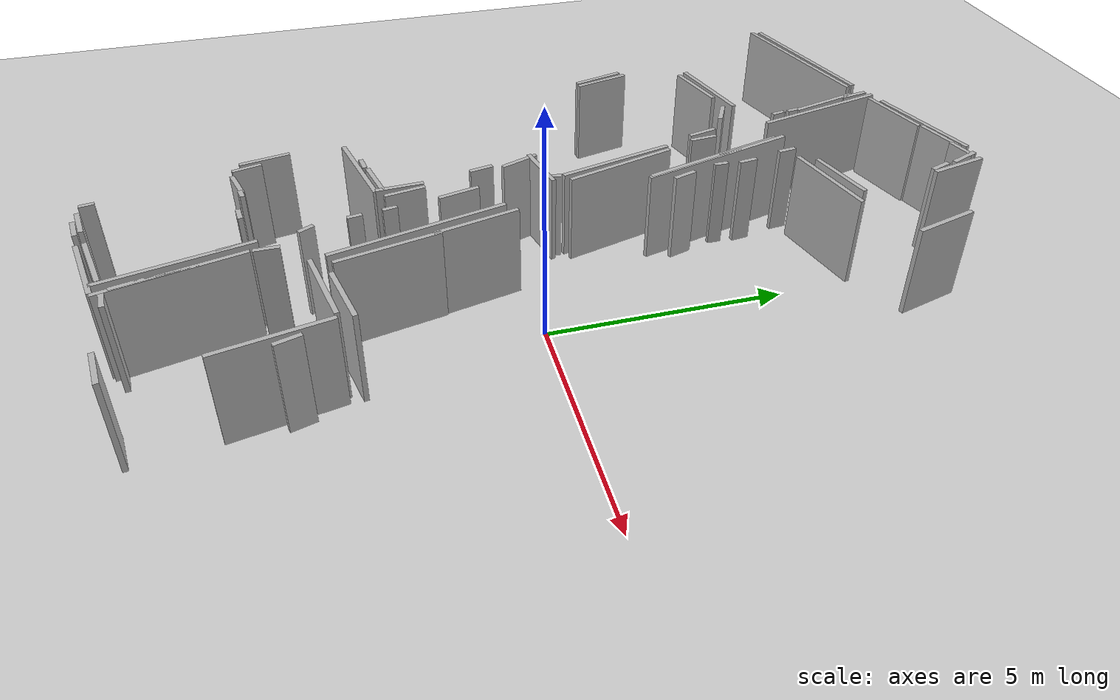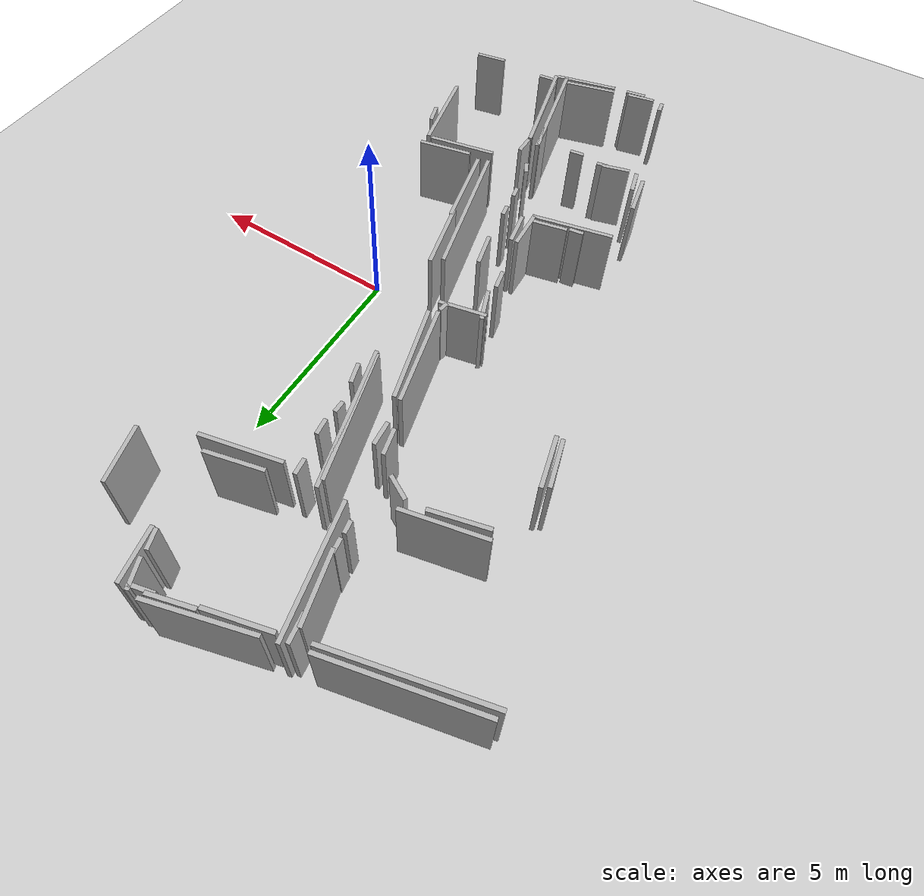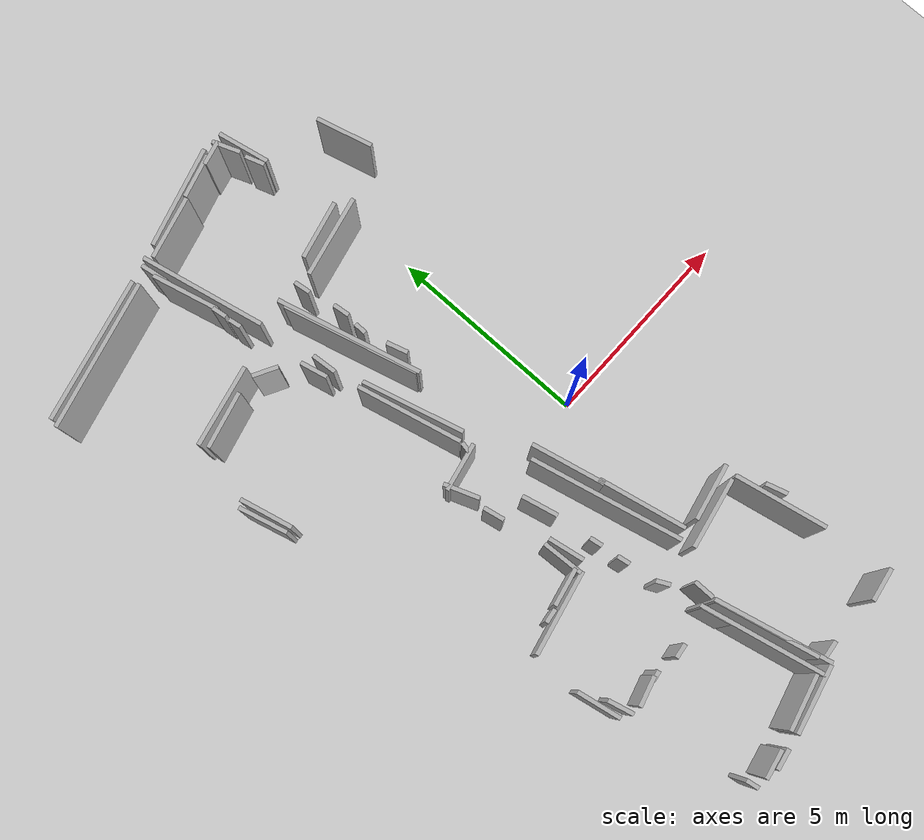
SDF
<sdf version="1.6">
 <world name="slam_world">
  <model name="ground_plane">
   <static>true</static>
   <link name="link">
    <collision name="collision">
     <geometry><plane><normal>0 0 1</normal><size>100 100</size></plane></geometry>
    </collision>
    <visual name="visual">
     <geometry><plane><normal>0 0 1</normal><size>100 100</size></plane></geometry>
     <material>
      <ambient>0.8 0.8 0.8 1</ambient>
      <diffuse>0.8 0.8 0.8 1</diffuse>
      <specular>0.8 0.8 0.8 1</specular>
     </material>
    </visual>
   </link>
  </model>
  <model name="wall_0">
   <static>true</static>
   <pose>0.2850000000000019 -3.74 1.0 0 0 0.21866894587394195</pose>
   <link name="link">
    <collision name="collision">
     <geometry><box><size>1.3829316685939332 0.1 2.0</size></box></geometry>
    </collision>
    <visual name="visual">
     <geometry><box><size>1.3829316685939332 0.1 2.0</size></box></geometry>
     <material>
      <ambient>0.5 0.5 0.5 1</ambient>
      <diffuse>0.7 0.7 0.7 1</diffuse>
      <specular>0.1 0.1 0.1 1</specular>
     </material>
    </visual>
   </link>
  </model>
  <model name="wall_2">
   <static>true</static>
   <pose>-6.464999999999999 8.485 1.0 0 0 0.24156570709532596</pose>
   <link name="link">
    <collision name="collision"><geometry><box><size>3.553167600887974 0.1 2.0</size></box></geometry></collision>
    <visual name="visual">
     <geometry><box><size>3.553167600887974 0.1 2.0</size></box></geometry>
     <material>
      <ambient>0.5 0.5 0.5 1</ambient>
      <diffuse>0.7 0.7 0.7 1</diffuse>
      <specular>0.1 0.1 0.1 1</specular>
     </material>
    </visual>
   </link>
  </model>
  <model name="wall_3">
   <static>true</static>
   <pose>-0.03999999999999915 -4.065 1.0 0 0 0.20304521725346514</pose>
   <link name="link">
    <collision name="collision">
     <geometry><box><size>1.7356554957709784 0.1 2.0</size></box></geometry>
    </collision>
    <visual name="visual">
     <geometry><box><size>1.7356554957709784 0.1 2.0</size></box></geometry>
     <material>
      <ambient>0.5 0.5 0.5 1</ambient>
      <diffuse>0.7 0.7 0.7 1</diffuse>
      <specular>0.1 0.1 0.1 1</specular>
     </material>
    </visual>
   </link>
  </model>
  <model name="wall_4">
   <static>true</static>
   <pose>-0.589999999999999 -7.815 1.0 0 0 0.12435499454676144</pose>
   <link name="link">
    <collision name="collision">
     <geometry><box><size>0.40311288741492746 0.1 2.0</size></box></geometry>
    </collision>
    <visual name="visual">
     <geometry><box><size>0.40311288741492746 0.1 2.0</size></box></geometry>
     <material>
      <ambient>0.5 0.5 0.5 1</ambient>
      <diffuse>0.7 0.7 0.7 1</diffuse>
      <specular>0.1 0.1 0.1 1</specular>
     </material>
    </visual>
   </link>
  </model>
  <model name="wall_6">
   <static>true</static>
   <pose>-3.514999999999999 4.535 1.0 0 0 -1.3439974787410107</pose>
   <link name="link">
    <collision name="collision">
     <geometry><box><size>0.6670832032063168 0.1 2.0</size></box></geometry>
    </collision>
    <visual name="visual">
     <geometry><box><size>0.6670832032063168 0.1 2.0</size></box></geometry>
     <material>
      <ambient>0.5 0.5 0.5 1</ambient>
      <diffuse>0.7 0.7 0.7 1</diffuse>
      <specular>0.1 0.1 0.1 1</specular>
     </material>
    </visual>
   </link>
  </model>
  <model name="wall_8">
   <static>true</static>
   <pose>-1.339999999999999 -1.0150000000000006 1.0 0 0 -1.346085158380254</pose>
   <link name="link">
    <collision name="collision"><geometry><box><size>1.795132307101624 0.1 2.0</size></box></geometry></collision>
    <visual name="visual">
     <geometry><box><size>1.795132307101624 0.1 2.0</size></box></geometry>
     <material>
      <ambient>0.5 0.5 0.5 1</ambient>
      <diffuse>0.7 0.7 0.7 1</diffuse>
      <specular>0.1 0.1 0.1 1</specular>
     </material>
    </visual>
   </link>
  </model>
  <model name="wall_9">
   <static>true</static>
   <pose>-2.639999999999999 9.510000000000002 1.0 0 0 0.28379410920832787</pose>
   <link name="link">
    <collision name="collision"><geometry><box><size>2.5 0.1 2.0</size></box></geometry></collision>
    <visual name="visual">
     <geometry><box><size>2.5 0.1 2.0</size></box></geometry>
     <material>
      <ambient>0.5 0.5 0.5 1</ambient>
      <diffuse>0.7 0.7 0.7 1</diffuse>
      <specular>0.1 0.1 0.1 1</specular>
     </material>
    </visual>
   </link>
  </model>
  <model name="wall_12">
   <static>true</static>
   <pose>-2.214999999999999 -2.59 1.0 0 0 -1.4056476493802699</pose>
   <link name="link">
    <collision name="collision"><geometry><box><size>0.304138126514911 0.1 2.0</size></box></geometry></collision>
    <visual name="visual">
     <geometry><box><size>0.304138126514911 0.1 2.0</size></box></geometry>
     <material>
      <ambient>0.5 0.5 0.5 1</ambient>
      <diffuse>0.7 0.7 0.7 1</diffuse>
      <specular>0.1 0.1 0.1 1</specular>
     </material>
    </visual>
   </link>
  </model>
  <model name="wall_13">
   <static>true</static>
   <pose>-2.1149999999999984 -3.29 1.0 0 0 -1.4056476493802699</pose>
   <link name="link">
    <collision name="collision"><geometry><box><size>0.304138126514911 0.1 2.0</size></box></geometry></collision>
    <visual name="visual">
     <geometry><box><size>0.304138126514911 0.1 2.0</size></box></geometry>
     <material>
      <ambient>0.5 0.5 0.5 1</ambient>
      <diffuse>0.7 0.7 0.7 1</diffuse>
      <specular>0.1 0.1 0.1 1</specular>
     </material>
    </visual>
   </link>
  </model>
  <model name="wall_14">
   <static>true</static>
   <pose>-3.8649999999999993 7.609999999999999 1.0 0 0 -1.3574276846430886</pose>
   <link name="link">
    <collision name="collision">
     <geometry><box><size>3.0696090956341657 0.1 2.0</size></box></geometry>
    </collision>
    <visual name="visual">
     <geometry><box><size>3.0696090956341657 0.1 2.0</size></box></geometry>
     <material>
      <ambient>0.5 0.5 0.5 1</ambient>
      <diffuse>0.7 0.7 0.7 1</diffuse>
      <specular>0.1 0.1 0.1 1</specular>
     </material>
    </visual>
   </link>
  </model>
  <model name="wall_15">
   <static>true</static>
   <pose>1.2100000000000009 -7.765000000000001 1.0 0 0 0.18534794999569476</pose>
   <link name="link">
    <collision name="collision">
     <geometry><box><size>0.8139410298049854 0.1 2.0</size></box></geometry>
    </collision>
    <visual name="visual">
     <geometry><box><size>0.8139410298049854 0.1 2.0</size></box></geometry>
     <material>
      <ambient>0.5 0.5 0.5 1</ambient>
      <diffuse>0.7 0.7 0.7 1</diffuse>
      <specular>0.1 0.1 0.1 1</specular>
     </material>
    </visual>
   </link>
  </model>
  <model name="wall_16">
   <static>true</static>
   <pose>0.9850000000000012 7.785 1.0 0 0 -1.317122230656254</pose>
   <link name="link">
    <collision name="collision">
     <geometry><box><size>1.3946325680981353 0.1 2.0</size></box></geometry>
    </collision>
    <visual name="visual">
     <geometry><box><size>1.3946325680981353 0.1 2.0</size></box></geometry>
     <material>
      <ambient>0.5 0.5 0.5 1</ambient>
      <diffuse>0.7 0.7 0.7 1</diffuse>
      <specular>0.1 0.1 0.1 1</specular>
     </material>
    </visual>
   </link>
  </model>
  <model name="wall_17">
   <static>true</static>
   <pose>-4.139999999999999 7.859999999999999 1.0 0 0 -1.3258176636680326</pose>
   <link name="link">
    <collision name="collision">
     <geometry><box><size>1.6492422502470643 0.1 2.0</size></box></geometry>
    </collision>
    <visual name="visual">
     <geometry><box><size>1.6492422502470643 0.1 2.0</size></box></geometry>
     <material>
      <ambient>0.5 0.5 0.5 1</ambient>
      <diffuse>0.7 0.7 0.7 1</diffuse>
      <specular>0.1 0.1 0.1 1</specular>
     </material>
    </visual>
   </link>
  </model>
  <model name="wall_18">
   <static>true</static>
   <pose>-3.2399999999999984 -8.465 1.0 0 0 0.21109333322274654</pose>
   <link name="link">
    <collision name="collision">
     <geometry><box><size>0.7158910531638177 0.1 2.0</size></box></geometry>
    </collision>
    <visual name="visual">
     <geometry><box><size>0.7158910531638177 0.1 2.0</size></box></geometry>
     <material>
      <ambient>0.5 0.5 0.5 1</ambient>
      <diffuse>0.7 0.7 0.7 1</diffuse>
      <specular>0.1 0.1 0.1 1</specular>
     </material>
    </visual>
   </link>
  </model>
  <model name="wall_20">
   <static>true</static>
   <pose>-6.464999999999999 8.309999999999999 1.0 0 0 0.24828990930306807</pose>
   <link name="link">
    <collision name="collision">
     <geometry><box><size>3.6623080154459977 0.1 2.0</size></box></geometry>
    </collision>
    <visual name="visual">
     <geometry><box><size>3.6623080154459977 0.1 2.0</size></box></geometry>
     <material>
      <ambient>0.5 0.5 0.5 1</ambient>
      <diffuse>0.7 0.7 0.7 1</diffuse>
      <specular>0.1 0.1 0.1 1</specular>
     </material>
    </visual>
   </link>
  </model>
  <model name="wall_21">
   <static>true</static>
   <pose>-2.664999999999999 2.3599999999999994 1.0 0 0 -1.306307944245664</pose>
   <link name="link">
    <collision name="collision">
     <geometry><box><size>2.4864633518312713 0.1 2.0</size></box></geometry>
    </collision>
    <visual name="visual">
     <geometry><box><size>2.4864633518312713 0.1 2.0</size></box></geometry>
     <material>
      <ambient>0.5 0.5 0.5 1</ambient>
      <diffuse>0.7 0.7 0.7 1</diffuse>
      <specular>0.1 0.1 0.1 1</specular>
     </material>
    </visual>
   </link>
  </model>
  <model name="wall_22">
   <static>true</static>
   <pose>-3.389999999999999 -2.74 1.0 0 0 0.21866894587394195</pose>
   <link name="link">
    <collision name="collision">
     <geometry><box><size>0.9219544457292888 0.1 2.0</size></box></geometry>
    </collision>
    <visual name="visual">
     <geometry><box><size>0.9219544457292888 0.1 2.0</size></box></geometry>
     <material>
      <ambient>0.5 0.5 0.5 1</ambient>
      <diffuse>0.7 0.7 0.7 1</diffuse>
      <specular>0.1 0.1 0.1 1</specular>
     </material>
    </visual>
   </link>
  </model>
  <model name="wall_24">
   <static>true</static>
   <pose>-3.889999999999999 -3.0150000000000006 1.0 0 0 0.2213144423477913</pose>
   <link name="link">
    <collision name="collision">
     <geometry><box><size>2.0500000000000003 0.1 2.0</size></box></geometry>
    </collision>
    <visual name="visual">
     <geometry><box><size>2.0500000000000003 0.1 2.0</size></box></geometry>
     <material>
      <ambient>0.5 0.5 0.5 1</ambient>
      <diffuse>0.7 0.7 0.7 1</diffuse>
      <specular>0.1 0.1 0.1 1</specular>
     </material>
    </visual>
   </link>
  </model>
  <model name="wall_32">
   <static>true</static>
   <pose>-2.839999999999999 2.3100000000000005 1.0 0 0 -1.3352513460740332</pose>
   <link name="link">
    <collision name="collision">
     <geometry><box><size>2.5709920264364885 0.1 2.0</size></box></geometry>
    </collision>
    <visual name="visual">
     <geometry><box><size>2.5709920264364885 0.1 2.0</size></box></geometry>
     <material>
      <ambient>0.5 0.5 0.5 1</ambient>
      <diffuse>0.7 0.7 0.7 1</diffuse>
      <specular>0.1 0.1 0.1 1</specular>
     </material>
    </visual>
   </link>
  </model>
  <model name="wall_35">
   <static>true</static>
   <pose>-1.4149999999999991 -6.615 1.0 0 0 -1.3539227111284884</pose>
   <link name="link">
    <collision name="collision"><geometry><box><size>3.020761493398643 0.1 2.0</size></box></geometry></collision>
    <visual name="visual">
     <geometry><box><size>3.020761493398643 0.1 2.0</size></box></geometry>
     <material>
      <ambient>0.5 0.5 0.5 1</ambient>
      <diffuse>0.7 0.7 0.7 1</diffuse>
      <specular>0.1 0.1 0.1 1</specular>
     </material>
    </visual>
   </link>
  </model>
  <model name="wall_36">
   <static>true</static>
   <pose>-3.039999999999999 -8.540000000000001 1.0 0 0 0.19739555984988075</pose>
   <link name="link">
    <collision name="collision">
     <geometry><box><size>0.5099019513592785 0.1 2.0</size></box></geometry>
    </collision>
    <visual name="visual">
     <geometry><box><size>0.5099019513592785 0.1 2.0</size></box></geometry>
     <material>
      <ambient>0.5 0.5 0.5 1</ambient>
      <diffuse>0.7 0.7 0.7 1</diffuse>
      <specular>0.1 0.1 0.1 1</specular>
     </material>
    </visual>
   </link>
  </model>
  <model name="wall_38">
   <static>true</static>
   <pose>-1.0649999999999986 9.535 1.0 0 0 -1.2036224929766774</pose>
   <link name="link">
    <collision name="collision"><geometry><box><size>0.696419413859206 0.1 2.0</size></box></geometry></collision>
    <visual name="visual">
     <geometry><box><size>0.696419413859206 0.1 2.0</size></box></geometry>
     <material>
      <ambient>0.5 0.5 0.5 1</ambient>
      <diffuse>0.7 0.7 0.7 1</diffuse>
      <specular>0.1 0.1 0.1 1</specular>
     </material>
    </visual>
   </link>
  </model>
  <model name="wall_46">
   <static>true</static>
   <pose>-1.089999999999999 6.635 1.0 0 0 0.24497866312686414</pose>
   <link name="link">
    <collision name="collision">
     <geometry><box><size>1.4430869689661812 0.1 2.0</size></box></geometry>
    </collision>
    <visual name="visual">
     <geometry><box><size>1.4430869689661812 0.1 2.0</size></box></geometry>
     <material>
      <ambient>0.5 0.5 0.5 1</ambient>
      <diffuse>0.7 0.7 0.7 1</diffuse>
      <specular>0.1 0.1 0.1 1</specular>
     </material>
    </visual>
   </link>
  </model>
  <model name="wall_47">
   <static>true</static>
   <pose>-1.3649999999999984 -2.1400000000000006 1.0 0 0 -1.338931665945508</pose>
   <link name="link">
    <collision name="collision">
     <geometry><box><size>3.6989863476363363 0.1 2.0</size></box></geometry>
    </collision>
    <visual name="visual">
     <geometry><box><size>3.6989863476363363 0.1 2.0</size></box></geometry>
     <material>
      <ambient>0.5 0.5 0.5 1</ambient>
      <diffuse>0.7 0.7 0.7 1</diffuse>
      <specular>0.1 0.1 0.1 1</specular>
     </material>
    </visual>
   </link>
  </model>
  <model name="wall_50">
   <static>true</static>
   <pose>-1.1649999999999991 -6.540000000000001 1.0 0 0 -1.3455195475808412</pose>
   <link name="link">
    <collision name="collision">
     <geometry><box><size>2.4622144504490264 0.1 2.0</size></box></geometry>
    </collision>
    <visual name="visual">
     <geometry><box><size>2.4622144504490264 0.1 2.0</size></box></geometry>
     <material>
      <ambient>0.5 0.5 0.5 1</ambient>
      <diffuse>0.7 0.7 0.7 1</diffuse>
      <specular>0.1 0.1 0.1 1</specular>
     </material>
    </visual>
   </link>
  </model>
  <model name="wall_54">
   <static>true</static>
   <pose>-1.839999999999999 -8.115 1.0 0 0 0.2629947316809195</pose>
   <link name="link">
    <collision name="collision">
     <geometry><box><size>1.3462912017836262 0.1 2.0</size></box></geometry>
    </collision>
    <visual name="visual">
     <geometry><box><size>1.3462912017836262 0.1 2.0</size></box></geometry>
     <material>
      <ambient>0.5 0.5 0.5 1</ambient>
      <diffuse>0.7 0.7 0.7 1</diffuse>
      <specular>0.1 0.1 0.1 1</specular>
     </material>
    </visual>
   </link>
  </model>
  <model name="wall_55">
   <static>true</static>
   <pose>-1.0149999999999988 6.335000000000001 1.0 0 0 0.22679884805388587</pose>
   <link name="link">
    <collision name="collision"><geometry><box><size>2.00124960961895 0.1 2.0</size></box></geometry></collision>
    <visual name="visual">
     <geometry><box><size>2.00124960961895 0.1 2.0</size></box></geometry>
     <material>
      <ambient>0.5 0.5 0.5 1</ambient>
      <diffuse>0.7 0.7 0.7 1</diffuse>
      <specular>0.1 0.1 0.1 1</specular>
     </material>
    </visual>
   </link>
  </model>
  <model name="wall_56">
   <static>true</static>
   <pose>-2.3149999999999986 6.01 1.0 0 0 -1.446441332248135</pose>
   <link name="link">
    <collision name="collision">
     <geometry><box><size>0.40311288741492746 0.1 2.0</size></box></geometry>
    </collision>
    <visual name="visual">
     <geometry><box><size>0.40311288741492746 0.1 2.0</size></box></geometry>
     <material>
      <ambient>0.5 0.5 0.5 1</ambient>
      <diffuse>0.7 0.7 0.7 1</diffuse>
      <specular>0.1 0.1 0.1 1</specular>
     </material>
    </visual>
   </link>
  </model>
  <model name="wall_60">
   <static>true</static>
   <pose>-2.014999999999999 9.559999999999999 1.0 0 0 0.27829965900511133</pose>
   <link name="link">
    <collision name="collision">
     <geometry><box><size>1.0920164833920778 0.1 2.0</size></box></geometry>
    </collision>
    <visual name="visual">
     <geometry><box><size>1.0920164833920778 0.1 2.0</size></box></geometry>
     <material>
      <ambient>0.5 0.5 0.5 1</ambient>
      <diffuse>0.7 0.7 0.7 1</diffuse>
      <specular>0.1 0.1 0.1 1</specular>
     </material>
    </visual>
   </link>
  </model>
  <model name="wall_61">
   <static>true</static>
   <pose>-1.9149999999999991 3.51 1.0 0 0 -1.2793395323170296</pose>
   <link name="link">
    <collision name="collision">
     <geometry><box><size>0.5220153254455275 0.1 2.0</size></box></geometry>
    </collision>
    <visual name="visual">
     <geometry><box><size>0.5220153254455275 0.1 2.0</size></box></geometry>
     <material>
      <ambient>0.5 0.5 0.5 1</ambient>
      <diffuse>0.7 0.7 0.7 1</diffuse>
      <specular>0.1 0.1 0.1 1</specular>
     </material>
    </visual>
   </link>
  </model>
  <model name="wall_67">
   <static>true</static>
   <pose>-4.064999999999999 -2.915 1.0 0 0 0.14189705460416394</pose>
   <link name="link">
    <collision name="collision">
     <geometry><box><size>0.3535533905932738 0.1 2.0</size></box></geometry>
    </collision>
    <visual name="visual">
     <geometry><box><size>0.3535533905932738 0.1 2.0</size></box></geometry>
     <material>
      <ambient>0.5 0.5 0.5 1</ambient>
      <diffuse>0.7 0.7 0.7 1</diffuse>
      <specular>0.1 0.1 0.1 1</specular>
     </material>
    </visual>
   </link>
  </model>
  <model name="wall_69">
   <static>true</static>
   <pose>-5.464999999999999 5.484999999999999 1.0 0 0 0.22679884805388587</pose>
   <link name="link">
    <collision name="collision"><geometry><box><size>2.00124960961895 0.1 2.0</size></box></geometry></collision>
    <visual name="visual">
     <geometry><box><size>2.00124960961895 0.1 2.0</size></box></geometry>
     <material>
      <ambient>0.5 0.5 0.5 1</ambient>
      <diffuse>0.7 0.7 0.7 1</diffuse>
      <specular>0.1 0.1 0.1 1</specular>
     </material>
    </visual>
   </link>
  </model>
  <model name="wall_70">
   <static>true</static>
   <pose>-0.8149999999999986 9.235 1.0 0 0 -1.373400766945016</pose>
   <link name="link">
    <collision name="collision">
     <geometry><box><size>1.2747548783981963 0.1 2.0</size></box></geometry>
    </collision>
    <visual name="visual">
     <geometry><box><size>1.2747548783981963 0.1 2.0</size></box></geometry>
     <material>
      <ambient>0.5 0.5 0.5 1</ambient>
      <diffuse>0.7 0.7 0.7 1</diffuse>
      <specular>0.1 0.1 0.1 1</specular>
     </material>
    </visual>
   </link>
  </model>
  <model name="wall_71">
   <static>true</static>
   <pose>-0.9149999999999991 -2.79 1.0 0 0 -1.35970299357215</pose>
   <link name="link">
    <collision name="collision"><geometry><box><size>2.147673159491453 0.1 2.0</size></box></geometry></collision>
    <visual name="visual">
     <geometry><box><size>2.147673159491453 0.1 2.0</size></box></geometry>
     <material>
      <ambient>0.5 0.5 0.5 1</ambient>
      <diffuse>0.7 0.7 0.7 1</diffuse>
      <specular>0.1 0.1 0.1 1</specular>
     </material>
    </visual>
   </link>
  </model>
  <model name="wall_75">
   <static>true</static>
   <pose>-2.464999999999999 4.41 1.0 0 0 -1.3111666973866392</pose>
   <link name="link">
    <collision name="collision"><geometry><box><size>3.310966626228661 0.1 2.0</size></box></geometry></collision>
    <visual name="visual">
     <geometry><box><size>3.310966626228661 0.1 2.0</size></box></geometry>
     <material>
      <ambient>0.5 0.5 0.5 1</ambient>
      <diffuse>0.7 0.7 0.7 1</diffuse>
      <specular>0.1 0.1 0.1 1</specular>
     </material>
    </visual>
   </link>
  </model>
  <model name="wall_77">
   <static>true</static>
   <pose>-1.1149999999999984 -6.665000000000001 1.0 0 0 -1.338692488719741</pose>
   <link name="link">
    <collision name="collision">
     <geometry><box><size>2.8257742301889586 0.1 2.0</size></box></geometry>
    </collision>
    <visual name="visual">
     <geometry><box><size>2.8257742301889586 0.1 2.0</size></box></geometry>
     <material>
      <ambient>0.5 0.5 0.5 1</ambient>
      <diffuse>0.7 0.7 0.7 1</diffuse>
      <specular>0.1 0.1 0.1 1</specular>
     </material>
    </visual>
   </link>
  </model>
  <model name="wall_81">
   <static>true</static>
   <pose>-1.6649999999999991 -5.540000000000001 1.0 0 0 -1.35970299357215</pose>
   <link name="link">
    <collision name="collision">
     <geometry><box><size>0.7158910531638177 0.1 2.0</size></box></geometry>
    </collision>
    <visual name="visual">
     <geometry><box><size>0.7158910531638177 0.1 2.0</size></box></geometry>
     <material>
      <ambient>0.5 0.5 0.5 1</ambient>
      <diffuse>0.7 0.7 0.7 1</diffuse>
      <specular>0.1 0.1 0.1 1</specular>
     </material>
    </visual>
   </link>
  </model>
  <model name="wall_82">
   <static>true</static>
   <pose>-3.889999999999999 -5.49 1.0 0 0 0.27829965900511133</pose>
   <link name="link">
    <collision name="collision">
     <geometry><box><size>0.7280109889280518 0.1 2.0</size></box></geometry>
    </collision>
    <visual name="visual">
     <geometry><box><size>0.7280109889280518 0.1 2.0</size></box></geometry>
     <material>
      <ambient>0.5 0.5 0.5 1</ambient>
      <diffuse>0.7 0.7 0.7 1</diffuse>
      <specular>0.1 0.1 0.1 1</specular>
     </material>
    </visual>
   </link>
  </model>
  <model name="wall_86">
   <static>true</static>
   <pose>-2.764999999999999 -5.465 1.0 0 0 0.14189705460416394</pose>
   <link name="link">
    <collision name="collision">
     <geometry><box><size>0.3535533905932738 0.1 2.0</size></box></geometry>
    </collision>
    <visual name="visual">
     <geometry><box><size>0.3535533905932738 0.1 2.0</size></box></geometry>
     <material>
      <ambient>0.5 0.5 0.5 1</ambient>
      <diffuse>0.7 0.7 0.7 1</diffuse>
      <specular>0.1 0.1 0.1 1</specular>
     </material>
    </visual>
   </link>
  </model>
  <model name="wall_87">
   <static>true</static>
   <pose>-4.789999999999999 -4.915000000000001 1.0 0 0 -1.382574821490126</pose>
   <link name="link">
    <collision name="collision">
     <geometry><box><size>1.0688779163215976 0.1 2.0</size></box></geometry>
    </collision>
    <visual name="visual">
     <geometry><box><size>1.0688779163215976 0.1 2.0</size></box></geometry>
     <material>
      <ambient>0.5 0.5 0.5 1</ambient>
      <diffuse>0.7 0.7 0.7 1</diffuse>
      <specular>0.1 0.1 0.1 1</specular>
     </material>
    </visual>
   </link>
  </model>
  <model name="wall_88">
   <static>true</static>
   <pose>-3.914999999999999 6.5600000000000005 1.0 0 0 -1.4056476493802699</pose>
   <link name="link">
    <collision name="collision"><geometry><box><size>0.304138126514911 0.1 2.0</size></box></geometry></collision>
    <visual name="visual">
     <geometry><box><size>0.304138126514911 0.1 2.0</size></box></geometry>
     <material>
      <ambient>0.5 0.5 0.5 1</ambient>
      <diffuse>0.7 0.7 0.7 1</diffuse>
      <specular>0.1 0.1 0.1 1</specular>
     </material>
    </visual>
   </link>
  </model>
  <model name="wall_89">
   <static>true</static>
   <pose>-6.6899999999999995 3.085000000000001 1.0 0 0 -1.3156139361740782</pose>
   <link name="link">
    <collision name="collision">
     <geometry><box><size>1.1884864324004714 0.1 2.0</size></box></geometry>
    </collision>
    <visual name="visual">
     <geometry><box><size>1.1884864324004714 0.1 2.0</size></box></geometry>
     <material>
      <ambient>0.5 0.5 0.5 1</ambient>
      <diffuse>0.7 0.7 0.7 1</diffuse>
      <specular>0.1 0.1 0.1 1</specular>
     </material>
    </visual>
   </link>
  </model>
  <model name="wall_90">
   <static>true</static>
   <pose>-3.2399999999999984 -0.5400000000000009 1.0 0 0 -1.373400766945016</pose>
   <link name="link">
    <collision name="collision">
     <geometry><box><size>0.5099019513592785 0.1 2.0</size></box></geometry>
    </collision>
    <visual name="visual">
     <geometry><box><size>0.5099019513592785 0.1 2.0</size></box></geometry>
     <material>
      <ambient>0.5 0.5 0.5 1</ambient>
      <diffuse>0.7 0.7 0.7 1</diffuse>
      <specular>0.1 0.1 0.1 1</specular>
     </material>
    </visual>
   </link>
  </model>
  <model name="wall_92">
   <static>true</static>
   <pose>-2.4399999999999986 -1.165 1.0 0 0 -1.3397056595989996</pose>
   <link name="link">
    <collision name="collision"><geometry><box><size>0.873212459828649 0.1 2.0</size></box></geometry></collision>
    <visual name="visual">
     <geometry><box><size>0.873212459828649 0.1 2.0</size></box></geometry>
     <material>
      <ambient>0.5 0.5 0.5 1</ambient>
      <diffuse>0.7 0.7 0.7 1</diffuse>
      <specular>0.1 0.1 0.1 1</specular>
     </material>
    </visual>
   </link>
  </model>
  <model name="wall_93">
   <static>true</static>
   <pose>1.1350000000000016 -4.99 1.0 0 0 -1.3690339824746096</pose>
   <link name="link">
    <collision name="collision"><geometry><box><size>2.245551157288562 0.1 2.0</size></box></geometry></collision>
    <visual name="visual">
     <geometry><box><size>2.245551157288562 0.1 2.0</size></box></geometry>
     <material>
      <ambient>0.5 0.5 0.5 1</ambient>
      <diffuse>0.7 0.7 0.7 1</diffuse>
      <specular>0.1 0.1 0.1 1</specular>
     </material>
    </visual>
   </link>
  </model>
  <model name="wall_96">
   <static>true</static>
   <pose>-2.139999999999999 4.41 1.0 0 0 -1.5707963267948966</pose>
   <link name="link">
    <collision name="collision">
     <geometry><box><size>0.30000000000000004 0.1 2.0</size></box></geometry>
    </collision>
    <visual name="visual">
     <geometry><box><size>0.30000000000000004 0.1 2.0</size></box></geometry>
     <material>
      <ambient>0.5 0.5 0.5 1</ambient>
      <diffuse>0.7 0.7 0.7 1</diffuse>
      <specular>0.1 0.1 0.1 1</specular>
     </material>
    </visual>
   </link>
  </model>
  <model name="wall_100">
   <static>true</static>
   <pose>-1.6399999999999988 -8.24 1.0 0 0 0.24497866312686414</pose>
   <link name="link">
    <collision name="collision">
     <geometry><box><size>1.6492422502470643 0.1 2.0</size></box></geometry>
    </collision>
    <visual name="visual">
     <geometry><box><size>1.6492422502470643 0.1 2.0</size></box></geometry>
     <material>
      <ambient>0.5 0.5 0.5 1</ambient>
      <diffuse>0.7 0.7 0.7 1</diffuse>
      <specular>0.1 0.1 0.1 1</specular>
     </material>
    </visual>
   </link>
  </model>
  <model name="wall_101">
   <static>true</static>
   <pose>-4.514999999999999 -5.290000000000001 1.0 0 0 -1.3258176636680326</pose>
   <link name="link">
    <collision name="collision">
     <geometry><box><size>0.6184658438426491 0.1 2.0</size></box></geometry>
    </collision>
    <visual name="visual">
     <geometry><box><size>0.6184658438426491 0.1 2.0</size></box></geometry>
     <material>
      <ambient>0.5 0.5 0.5 1</ambient>
      <diffuse>0.7 0.7 0.7 1</diffuse>
      <specular>0.1 0.1 0.1 1</specular>
     </material>
    </visual>
   </link>
  </model>
  <model name="wall_105">
   <static>true</static>
   <pose>-2.4399999999999986 4.484999999999999 1.0 0 0 -1.3156139361740782</pose>
   <link name="link">
    <collision name="collision"><geometry><box><size>3.565459297201414 0.1 2.0</size></box></geometry></collision>
    <visual name="visual">
     <geometry><box><size>3.565459297201414 0.1 2.0</size></box></geometry>
     <material>
      <ambient>0.5 0.5 0.5 1</ambient>
      <diffuse>0.7 0.7 0.7 1</diffuse>
      <specular>0.1 0.1 0.1 1</specular>
     </material>
    </visual>
   </link>
  </model>
  <model name="wall_106">
   <static>true</static>
   <pose>-5.664999999999999 5.234999999999999 1.0 0 0 0.2536740961386427</pose>
   <link name="link">
    <collision name="collision">
     <geometry><box><size>1.3946325680981353 0.1 2.0</size></box></geometry>
    </collision>
    <visual name="visual">
     <geometry><box><size>1.3946325680981353 0.1 2.0</size></box></geometry>
     <material>
      <ambient>0.5 0.5 0.5 1</ambient>
      <diffuse>0.7 0.7 0.7 1</diffuse>
      <specular>0.1 0.1 0.1 1</specular>
     </material>
    </visual>
   </link>
  </model>
  <model name="wall_111">
   <static>true</static>
   <pose>-1.9149999999999991 -4.24 1.0 0 0 -1.1071487177940904</pose>
   <link name="link">
    <collision name="collision">
     <geometry><box><size>0.3354101966249685 0.1 2.0</size></box></geometry>
    </collision>
    <visual name="visual">
     <geometry><box><size>0.3354101966249685 0.1 2.0</size></box></geometry>
     <material>
      <ambient>0.5 0.5 0.5 1</ambient>
      <diffuse>0.7 0.7 0.7 1</diffuse>
      <specular>0.1 0.1 0.1 1</specular>
     </material>
    </visual>
   </link>
  </model>
  <model name="wall_112">
   <static>true</static>
   <pose>-3.339999999999999 0.3100000000000005 1.0 0 0 -1.2120256565243244</pose>
   <link name="link">
    <collision name="collision">
     <geometry><box><size>0.8544003745317531 0.1 2.0</size></box></geometry>
    </collision>
    <visual name="visual">
     <geometry><box><size>0.8544003745317531 0.1 2.0</size></box></geometry>
     <material>
      <ambient>0.5 0.5 0.5 1</ambient>
      <diffuse>0.7 0.7 0.7 1</diffuse>
      <specular>0.1 0.1 0.1 1</specular>
     </material>
    </visual>
   </link>
  </model>
  <model name="wall_114">
   <static>true</static>
   <pose>-1.4399999999999986 -4.99 1.0 0 0 -1.5707963267948966</pose>
   <link name="link">
    <collision name="collision"><geometry><box><size>0.5 0.1 2.0</size></box></geometry></collision>
    <visual name="visual">
     <geometry><box><size>0.5 0.1 2.0</size></box></geometry>
     <material>
      <ambient>0.5 0.5 0.5 1</ambient>
      <diffuse>0.7 0.7 0.7 1</diffuse>
      <specular>0.1 0.1 0.1 1</specular>
     </material>
    </visual>
   </link>
  </model>
  <model name="wall_115">
   <static>true</static>
   <pose>1.285000000000002 -4.74 1.0 0 0 -1.2793395323170296</pose>
   <link name="link">
    <collision name="collision">
     <geometry><box><size>0.5220153254455275 0.1 2.0</size></box></geometry>
    </collision>
    <visual name="visual">
     <geometry><box><size>0.5220153254455275 0.1 2.0</size></box></geometry>
     <material>
      <ambient>0.5 0.5 0.5 1</ambient>
      <diffuse>0.7 0.7 0.7 1</diffuse>
      <specular>0.1 0.1 0.1 1</specular>
     </material>
    </visual>
   </link>
  </model>
  <model name="wall_116">
   <static>true</static>
   <pose>-3.264999999999999 4.460000000000001 1.0 0 0 -1.4876550949064553</pose>
   <link name="link">
    <collision name="collision">
     <geometry><box><size>0.6020797289396148 0.1 2.0</size></box></geometry>
    </collision>
    <visual name="visual">
     <geometry><box><size>0.6020797289396148 0.1 2.0</size></box></geometry>
     <material>
      <ambient>0.5 0.5 0.5 1</ambient>
      <diffuse>0.7 0.7 0.7 1</diffuse>
      <specular>0.1 0.1 0.1 1</specular>
     </material>
    </visual>
   </link>
  </model>
  <model name="wall_117">
   <static>true</static>
   <pose>-0.8649999999999984 8.835 1.0 0 0 -1.2490457723982544</pose>
   <link name="link">
    <collision name="collision">
     <geometry><box><size>0.47434164902525694 0.1 2.0</size></box></geometry>
    </collision>
    <visual name="visual">
     <geometry><box><size>0.47434164902525694 0.1 2.0</size></box></geometry>
     <material>
      <ambient>0.5 0.5 0.5 1</ambient>
      <diffuse>0.7 0.7 0.7 1</diffuse>
      <specular>0.1 0.1 0.1 1</specular>
     </material>
    </visual>
   </link>
  </model>
  <model name="wall_118">
   <static>true</static>
   <pose>-3.8649999999999993 -8.39 1.0 0 0 -1.4056476493802699</pose>
   <link name="link">
    <collision name="collision"><geometry><box><size>0.304138126514911 0.1 2.0</size></box></geometry></collision>
    <visual name="visual">
     <geometry><box><size>0.304138126514911 0.1 2.0</size></box></geometry>
     <material>
      <ambient>0.5 0.5 0.5 1</ambient>
      <diffuse>0.7 0.7 0.7 1</diffuse>
      <specular>0.1 0.1 0.1 1</specular>
     </material>
    </visual>
   </link>
  </model>
  <model name="wall_119">
   <static>true</static>
   <pose>-2.5649999999999986 0.8849999999999998 1.0 0 0 1.373400766945016</pose>
   <link name="link">
    <collision name="collision">
     <geometry><box><size>0.25495097567963926 0.1 2.0</size></box></geometry>
    </collision>
    <visual name="visual">
     <geometry><box><size>0.25495097567963926 0.1 2.0</size></box></geometry>
     <material>
      <ambient>0.5 0.5 0.5 1</ambient>
      <diffuse>0.7 0.7 0.7 1</diffuse>
      <specular>0.1 0.1 0.1 1</specular>
     </material>
    </visual>
   </link>
  </model>
  <model name="wall_121">
   <static>true</static>
   <pose>-2.1149999999999984 5.01 1.0 0 0 -1.446441332248135</pose>
   <link name="link">
    <collision name="collision">
     <geometry><box><size>0.40311288741492746 0.1 2.0</size></box></geometry>
    </collision>
    <visual name="visual">
     <geometry><box><size>0.40311288741492746 0.1 2.0</size></box></geometry>
     <material>
      <ambient>0.5 0.5 0.5 1</ambient>
      <diffuse>0.7 0.7 0.7 1</diffuse>
      <specular>0.1 0.1 0.1 1</specular>
     </material>
    </visual>
   </link>
  </model>
  <model name="wall_123">
   <static>true</static>
   <pose>-6.539999999999999 3.135 1.0 0 0 -1.3352513460740332</pose>
   <link name="link">
    <collision name="collision">
     <geometry><box><size>1.2854960132182442 0.1 2.0</size></box></geometry>
    </collision>
    <visual name="visual">
     <geometry><box><size>1.2854960132182442 0.1 2.0</size></box></geometry>
     <material>
      <ambient>0.5 0.5 0.5 1</ambient>
      <diffuse>0.7 0.7 0.7 1</diffuse>
      <specular>0.1 0.1 0.1 1</specular>
     </material>
    </visual>
   </link>
  </model>
  <model name="wall_124">
   <static>true</static>
   <pose>-3.964999999999999 6.984999999999999 1.0 0 0 -1.4288992721907328</pose>
   <link name="link">
    <collision name="collision">
     <geometry><box><size>0.3535533905932738 0.1 2.0</size></box></geometry>
    </collision>
    <visual name="visual">
     <geometry><box><size>0.3535533905932738 0.1 2.0</size></box></geometry>
     <material>
      <ambient>0.5 0.5 0.5 1</ambient>
      <diffuse>0.7 0.7 0.7 1</diffuse>
      <specular>0.1 0.1 0.1 1</specular>
     </material>
    </visual>
   </link>
  </model>
  <model name="wall_125">
   <static>true</static>
   <pose>-2.764999999999999 -2.215 1.0 0 0 -1.396124127786657</pose>
   <link name="link">
    <collision name="collision">
     <geometry><box><size>0.8631338250816034 0.1 2.0</size></box></geometry>
    </collision>
    <visual name="visual">
     <geometry><box><size>0.8631338250816034 0.1 2.0</size></box></geometry>
     <material>
      <ambient>0.5 0.5 0.5 1</ambient>
      <diffuse>0.7 0.7 0.7 1</diffuse>
      <specular>0.1 0.1 0.1 1</specular>
     </material>
    </visual>
   </link>
  </model>
  <model name="wall_126">
   <static>true</static>
   <pose>-2.964999999999999 -2.29 1.0 0 0 -1.5208379310729538</pose>
   <link name="link">
    <collision name="collision">
     <geometry><box><size>1.0012492197250393 0.1 2.0</size></box></geometry>
    </collision>
    <visual name="visual">
     <geometry><box><size>1.0012492197250393 0.1 2.0</size></box></geometry>
     <material>
      <ambient>0.5 0.5 0.5 1</ambient>
      <diffuse>0.7 0.7 0.7 1</diffuse>
      <specular>0.1 0.1 0.1 1</specular>
     </material>
    </visual>
   </link>
  </model>
  <model name="wall_127">
   <static>true</static>
   <pose>-1.3899999999999988 9.684999999999999 1.0 0 0 0.24497866312686414</pose>
   <link name="link">
    <collision name="collision">
     <geometry><box><size>0.6184658438426491 0.1 2.0</size></box></geometry>
    </collision>
    <visual name="visual">
     <geometry><box><size>0.6184658438426491 0.1 2.0</size></box></geometry>
     <material>
      <ambient>0.5 0.5 0.5 1</ambient>
      <diffuse>0.7 0.7 0.7 1</diffuse>
      <specular>0.1 0.1 0.1 1</specular>
     </material>
    </visual>
   </link>
  </model>
  <model name="wall_128">
   <static>true</static>
   <pose>-3.289999999999999 9.16 1.0 0 0 0.260602391747341</pose>
   <link name="link">
    <collision name="collision">
     <geometry><box><size>1.5524174696260025 0.1 2.0</size></box></geometry>
    </collision>
    <visual name="visual">
     <geometry><box><size>1.5524174696260025 0.1 2.0</size></box></geometry>
     <material>
      <ambient>0.5 0.5 0.5 1</ambient>
      <diffuse>0.7 0.7 0.7 1</diffuse>
      <specular>0.1 0.1 0.1 1</specular>
     </material>
    </visual>
   </link>
  </model>
  <model name="wall_129">
   <static>true</static>
   <pose>-4.289999999999999 8.684999999999999 1.0 0 0 -1.4181469983996315</pose>
   <link name="link">
    <collision name="collision">
     <geometry><box><size>0.6576473218982953 0.1 2.0</size></box></geometry>
    </collision>
    <visual name="visual">
     <geometry><box><size>0.6576473218982953 0.1 2.0</size></box></geometry>
     <material>
      <ambient>0.5 0.5 0.5 1</ambient>
      <diffuse>0.7 0.7 0.7 1</diffuse>
      <specular>0.1 0.1 0.1 1</specular>
     </material>
    </visual>
   </link>
  </model>
  <model name="wall_131">
   <static>true</static>
   <pose>-4.264999999999999 5.3100000000000005 1.0 0 0 -0.4993467216801301</pose>
   <link name="link">
    <collision name="collision">
     <geometry><box><size>0.6264982043070835 0.1 2.0</size></box></geometry>
    </collision>
    <visual name="visual">
     <geometry><box><size>0.6264982043070835 0.1 2.0</size></box></geometry>
     <material>
      <ambient>0.5 0.5 0.5 1</ambient>
      <diffuse>0.7 0.7 0.7 1</diffuse>
      <specular>0.1 0.1 0.1 1</specular>
     </material>
    </visual>
   </link>
  </model>
  <model name="wall_133">
   <static>true</static>
   <pose>-2.964999999999999 0.6850000000000005 1.0 0 0 0.21406068356382152</pose>
   <link name="link">
    <collision name="collision"><geometry><box><size>1.176860229593982 0.1 2.0</size></box></geometry></collision>
    <visual name="visual">
     <geometry><box><size>1.176860229593982 0.1 2.0</size></box></geometry>
     <material>
      <ambient>0.5 0.5 0.5 1</ambient>
      <diffuse>0.7 0.7 0.7 1</diffuse>
      <specular>0.1 0.1 0.1 1</specular>
     </material>
    </visual>
   </link>
  </model>
  <model name="wall_136">
   <static>true</static>
   <pose>-3.514999999999999 -5.415000000000001 1.0 0 0 0.19739555984988075</pose>
   <link name="link">
    <collision name="collision">
     <geometry><box><size>0.25495097567963926 0.1 2.0</size></box></geometry>
    </collision>
    <visual name="visual">
     <geometry><box><size>0.25495097567963926 0.1 2.0</size></box></geometry>
     <material>
      <ambient>0.5 0.5 0.5 1</ambient>
      <diffuse>0.7 0.7 0.7 1</diffuse>
      <specular>0.1 0.1 0.1 1</specular>
     </material>
    </visual>
   </link>
  </model>
 </world>
</sdf>
